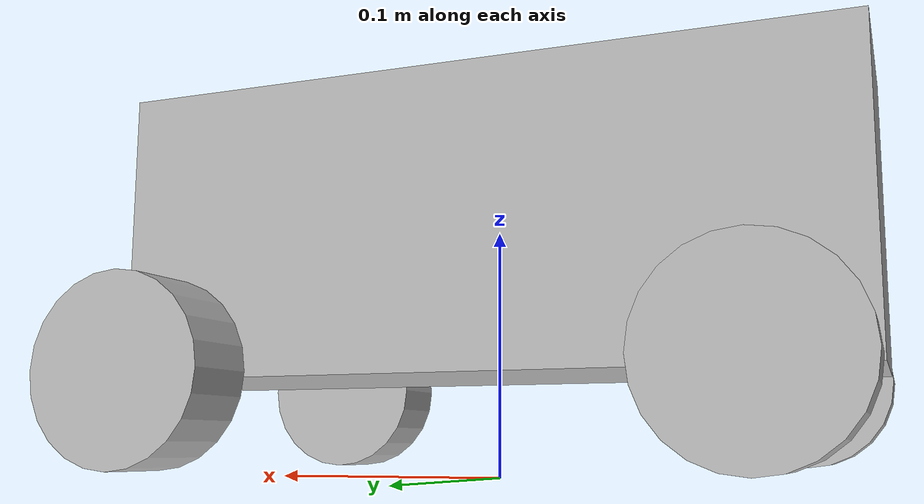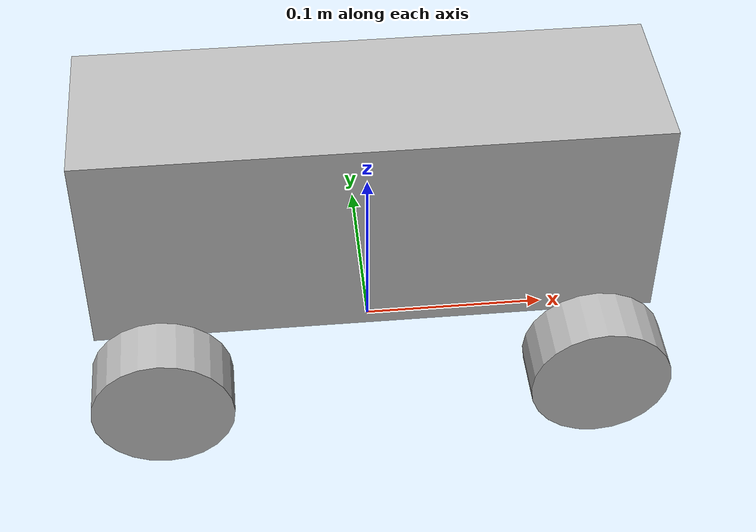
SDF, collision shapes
<sdf version="1.8">
  <model name="rover">
    <pose>0 0 .04 0 0 0</pose>
    <self_collide>false</self_collide>
    <static>false</static>
    <link name="rover/Base">
      <inertial>
        <pose>0 0 0 0 0 0</pose>
        <mass>3.0</mass>
        <inertia>
          <ixx>0.0054</ixx>
          <ixy>0</ixy>
          <ixz>0</ixz>
          <iyy>0.0252</iyy>
          <iyz>0</iyz>
          <izz>0.0252</izz>
        </inertia>
      </inertial>
      <visual name="rover/BaseVisual">
        <pose>.1371 0 -.0115 -0.018 0 1.5707</pose>
        <geometry>
          <mesh>
            <uri>model://rover/meshes/BaseReduced.dae</uri>
          </mesh>
        </geometry>
      </visual>
      <visual name="rover/TopVisual">
        <pose>.1371 0 -.0115 -0.018 0 1.5707</pose>
        <geometry>
          <mesh>
            <uri>model://rover/meshes/TopReduced.dae</uri>
          </mesh>
        </geometry>
      </visual>
      <collision name="rover/BaseCollision">
        <pose>0 0 .06 0 0 0</pose>
        <geometry>
          <box>
            <size>.3 .09 .12</size>
          </box>
        </geometry>
      </collision>
      <sensor name="NPUSim/Camera" type="camera">
        <pose>.16 0 .3 0 0.5 0</pose>
        <always_on>1</always_on>
        <update_rate>10</update_rate>
        <camera>
          <horizontal_fov>1.5</horizontal_fov>
          <image>
            <width>300</width>
            <height>300</height>
            <format>R8G8B8</format>
          </image>
          <clip>
            <near>0.1</near>
            <far>1000</far>
          </clip>
        </camera>
        <topic>NPU/image_sim</topic>
        <enable_metrics>true</enable_metrics>
      </sensor>
      <sensor name="air_pressure_sensor" type="air_pressure">
        <always_on>1</always_on>
        <update_rate>50</update_rate>
        <air_pressure>
          <pressure>
            <noise type="gaussian">
              <mean>0</mean>
              <stddev>0.01</stddev>
            </noise>
          </pressure>
        </air_pressure>
      </sensor>
      <sensor name="imu_sensor" type="imu">
        <always_on>1</always_on>
        <update_rate>250</update_rate>
      </sensor>
    </link>
    <link name="rover/FrontRightWheel">
      <pose relative_to="rover/FrontRightWheelJoint">0 0 0 0 0 0</pose>
      <inertial>
        <mass>.05</mass>
        <inertia>
          <ixx>0.00003331</ixx>
          <ixy>0</ixy>
          <ixz>0</ixz>
          <iyy>0.0000204</iyy>
          <iyz>0</iyz>
          <izz>0.0000204</izz>
        </inertia>
      </inertial>
      <gravity>true</gravity>
      <velocity_decay/>
      <visual name="rover/FrontRightWheelVisual">
        <pose>0 0 0 0 0 0</pose>
        <geometry>
          <mesh>
            <uri>model://rover/meshes/Wheel.dae</uri>
          </mesh>
        </geometry>
      </visual>
      <collision name="rover/FrontRightWheelCollision">
        <pose>0 .015 0 -1.5707 0 0</pose>
        <geometry>
          <cylinder>
            <length>0.03</length>
            <radius>0.0365</radius>
          </cylinder>
        </geometry>
        <surface>
          <friction>
            <ode>
              <mu>0.5</mu>
              <mu2>1.0</mu2>
              <fdir1>0 0 1</fdir1>
            </ode>
          </friction>
        </surface>
      </collision>
    </link>
    <link name="rover/FrontRightWheelSteering">
      <pose relative_to="rover/FrontRightWheelSteeringJoint">0 0 0 0 0 0</pose>
      <inertial>
        <mass>0.005</mass>
        <inertia>
          <ixx>0.0000018</ixx>
          <iyy>0.0000018</iyy>
          <izz>0.0000018</izz>
        </inertia>
      </inertial>
    </link>
    <link name="rover/FrontLeftWheel">
      <pose relative_to="rover/FrontLeftWheelJoint">0 0 0 0 0 0</pose>
      <inertial>
        <mass>.05</mass>
        <inertia>
          <ixx>0.00003331</ixx>
          <ixy>0</ixy>
          <ixz>0</ixz>
          <iyy>0.0000204</iyy>
          <iyz>0</iyz>
          <izz>0.0000204</izz>
        </inertia>
      </inertial>
      <gravity>true</gravity>
      <velocity_decay/>
      <visual name="rover/FrontLeftWheelVisual">
        <pose>0 0 0 0 0 3.14159</pose>
        <geometry>
          <mesh>
            <uri>model://rover/meshes/Wheel.dae</uri>
          </mesh>
        </geometry>
      </visual>
      <collision name="rover/FrontLeftWheelCollision">
        <pose>0 -.015 0 -1.5707 0 0</pose>
        <geometry>
          <cylinder>
            <length>0.03</length>
            <radius>0.0365</radius>
          </cylinder>
        </geometry>
        <surface>
          <friction>
            <ode>
              <mu>0.5</mu>
              <mu2>1.0</mu2>
              <fdir1>0 0 1</fdir1>
            </ode>
          </friction>
        </surface>
      </collision>
    </link>
    <link name="rover/FrontLeftWheelSteering">
      <pose relative_to="rover/FrontLeftWheelSteeringJoint">0 0 0 0 0 0</pose>
      <inertial>
        <mass>0.005</mass>
        <inertia>
          <ixx>0.0000018</ixx>
          <iyy>0.0000018</iyy>
          <izz>0.0000018</izz>
        </inertia>
      </inertial>
    </link>
    <link name="rover/RearRightWheel">
      <pose relative_to="rover/RearRightWheelJoint">0 0 0 0 0 0</pose>
      <inertial>
        <mass>.05</mass>
        <inertia>
          <ixx>0.00003331</ixx>
          <ixy>0</ixy>
          <ixz>0</ixz>
          <iyy>0.0000204</iyy>
          <iyz>0</iyz>
          <izz>0.0000204</izz>
        </inertia>
      </inertial>
      <gravity>true</gravity>
      <velocity_decay/>
      <visual name="rover/RearRightWheelVisual">
        <pose>0 0 0 0 0 0</pose>
        <geometry>
          <mesh>
            <uri>model://rover/meshes/Wheel.dae</uri>
          </mesh>
        </geometry>
      </visual>
      <collision name="rover/RearRightWheelCollision">
        <pose>0 .015 0 -1.5707 0 0</pose>
        <geometry>
          <cylinder>
            <length>0.03</length>
            <radius>0.0365</radius>
          </cylinder>
        </geometry>
        <surface>
          <friction>
            <ode>
              <mu>0.5</mu>
              <mu2>1.0</mu2>
              <fdir1>0 0 1</fdir1>
            </ode>
          </friction>
        </surface>
      </collision>
    </link>
    <link name="rover/RearLeftWheel">
      <pose relative_to="rover/RearLeftWheelJoint">0 0 0 0 0 0</pose>
      <inertial>
        <mass>.05</mass>
        <inertia>
          <ixx>0.00003331</ixx>
          <ixy>0</ixy>
          <ixz>0</ixz>
          <iyy>0.0000204</iyy>
          <iyz>0</iyz>
          <izz>0.0000204</izz>
        </inertia>
      </inertial>
      <gravity>true</gravity>
      <velocity_decay/>
      <visual name="rover/RearLeftWheelVisual">
        <pose>0 0 0 0 0 3.14159</pose>
        <geometry>
          <mesh>
            <uri>model://rover/meshes/Wheel.dae</uri>
          </mesh>
        </geometry>
      </visual>
      <collision name="rover/RearLeftWheelCollision">
        <pose>0 -.015 0 -1.5707 0 0</pose>
        <geometry>
          <cylinder>
            <length>0.03</length>
            <radius>0.0365</radius>
          </cylinder>
        </geometry>
        <surface>
          <friction>
            <ode>
              <mu>0.5</mu>
              <mu2>1.0</mu2>
              <fdir1>0 0 1</fdir1>
            </ode>
          </friction>
        </surface>
      </collision>
    </link>
    <joint name="rover/FrontRightWheelSteeringJoint" type="revolute">
      <parent>rover/Base</parent>
      <child>rover/FrontRightWheelSteering</child>
      <pose relative_to="rover/Base">.112 -.10 0 0 0 0</pose>
      <axis>
        <xyz>0 0 1</xyz>
        <limit>
          <lower>-0.6</lower>
          <upper>0.6</upper>
          <velocity>1.0</velocity>
          <effort>25</effort>
        </limit>
        <use_parent_model_frame>1</use_parent_model_frame>
      </axis>
    </joint>
    <joint name="rover/FrontRightWheelJoint" type="revolute">
      <parent>rover/FrontRightWheelSteering</parent>
      <child>rover/FrontRightWheel</child>
      <pose relative_to="rover/FrontRightWheelSteeringJoint">0 0 0 0 0 0</pose>
      <axis>
        <xyz>0 1 0</xyz>
        <limit>
          <lower>-1.79769e+308</lower>
          <upper>1.79769e+308</upper>
        </limit>
        <dynamics>
          <spring_reference>0</spring_reference>
          <spring_stiffness>0</spring_stiffness>
        </dynamics>
        <use_parent_model_frame>1</use_parent_model_frame>
      </axis>
    </joint>
    <joint name="rover/FrontLeftWheelSteeringJoint" type="revolute">
      <parent>rover/Base</parent>
      <child>rover/FrontLeftWheelSteering</child>
      <pose relative_to="rover/Base">.112 .10 0 0 0 0</pose>
      <axis>
        <xyz>0 0 1</xyz>
        <limit>
          <lower>-0.6</lower>
          <upper>0.6</upper>
          <velocity>1.0</velocity>
          <effort>25</effort>
        </limit>
        <use_parent_model_frame>1</use_parent_model_frame>
      </axis>
    </joint>
    <joint name="rover/FrontLeftWheelJoint" type="revolute">
      <parent>rover/FrontLeftWheelSteering</parent>
      <child>rover/FrontLeftWheel</child>
      <pose relative_to="rover/FrontLeftWheelSteeringJoint">0 0 0 0 0 0</pose>
      <axis>
        <xyz>0 1 0</xyz>
        <limit>
          <lower>-1.79769e+308</lower>
          <upper>1.79769e+308</upper>
        </limit>
        <dynamics>
          <spring_reference>0</spring_reference>
          <spring_stiffness>0</spring_stiffness>
        </dynamics>
        <use_parent_model_frame>1</use_parent_model_frame>
      </axis>
    </joint>
    <joint name="rover/RearRightWheelJoint" type="revolute">
      <parent>rover/Base</parent>
      <child>rover/RearRightWheel</child>
      <pose relative_to="rover/Base">-.1135 -.10 0 0 0 0</pose>
      <axis>
        <xyz>0 1 0</xyz>
        <limit>
          <lower>-1.79769e+308</lower>
          <upper>1.79769e+308</upper>
        </limit>
        <dynamics>
          <spring_reference>0</spring_reference>
          <spring_stiffness>0</spring_stiffness>
        </dynamics>
        <use_parent_model_frame>1</use_parent_model_frame>
      </axis>
    </joint>
    <joint name="rover/RearLeftWheelJoint" type="revolute">
      <parent>rover/Base</parent>
      <child>rover/RearLeftWheel</child>
      <pose relative_to="rover/Base">-.1135 .10 0 0 0 0</pose>
      <axis>
        <xyz>0 1 0</xyz>
        <limit>
          <lower>-1.79769e+308</lower>
          <upper>1.79769e+308</upper>
        </limit>
        <dynamics>
          <spring_reference>0</spring_reference>
          <spring_stiffness>0</spring_stiffness>
        </dynamics>
        <use_parent_model_frame>1</use_parent_model_frame>
      </axis>
    </joint>
    <plugin
      filename="ignition-gazebo-ackermann-steering-system"
      name="ignition::gazebo::systems::AckermannSteering">
      <left_joint>rover/FrontLeftWheelJoint</left_joint>
      <left_joint>rover/RearLeftWheelJoint</left_joint>
      <right_joint>rover/FrontRightWheelJoint</right_joint>
      <right_joint>rover/FrontRightWheelJoint</right_joint>
      <left_steering_joint>rover/FrontLeftWheelSteeringJoint</left_steering_joint>
      <right_steering_joint>rover/FrontRightWheelSteeringJoint</right_steering_joint>
      <kingpin_width>.18</kingpin_width>
      <steering_limit>0.5</steering_limit>
      <wheel_base>.2255</wheel_base>
      <wheel_separation>.2</wheel_separation>
      <wheel_radius>0.0365</wheel_radius>
      <min_velocity>-100</min_velocity>
      <max_velocity>100</max_velocity>
      <min_acceleration>-5</min_acceleration>
      <max_acceleration>5</max_acceleration>
      <topic>/cmd_vel</topic>
    </plugin>
  </model>
</sdf>
